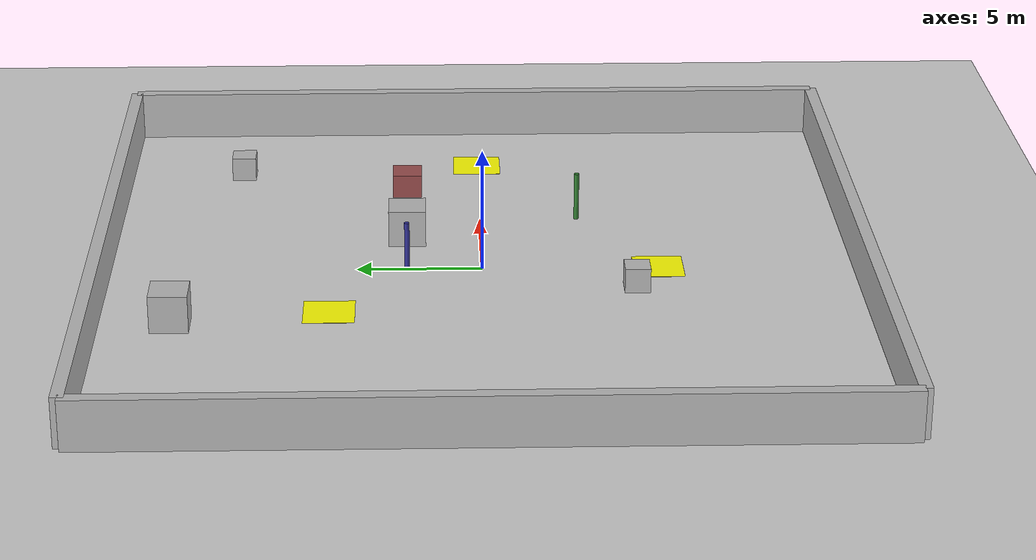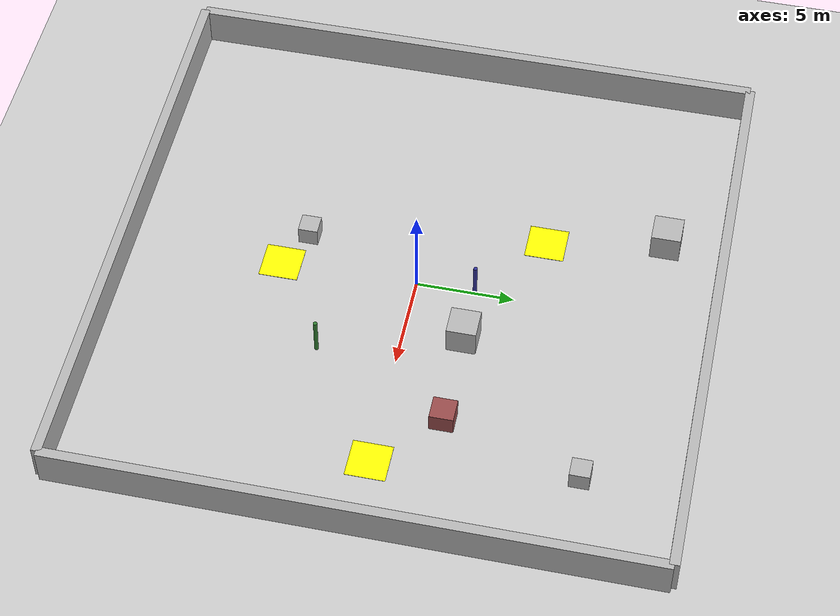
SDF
<sdf version="1.8">
 <world name="world_trekking">
  <spherical_coordinates>
   <surface_model>EARTH_WGS84</surface_model>
   <world_frame_orientation>ENU</world_frame_orientation>
   <latitude_deg>41.10410</latitude_deg>
   <longitude_deg>29.02376</longitude_deg>
   <elevation>0</elevation>
   <heading_deg>0</heading_deg>
  </spherical_coordinates>
  <model name="ground_plane">
   <static>true</static>
   <link name="ground">
    <visual name="visual">
     <geometry><plane><normal>0 0 1</normal><size>1000 1000</size></plane></geometry>
     <material>
      <ambient>0.8 0.8 0.8 1</ambient>
      <diffuse>0.8 0.8 0.8 1</diffuse>
      <specular>0.8 0.8 0.8 1</specular>
      <emissive>0.0 0.0 0.0 1</emissive>
     </material>
    </visual>
    <collision name="collision">
     <geometry><plane><normal>0 0 1</normal><size>1000 1000</size></plane></geometry>
    </collision>
    <inertial>
     <mass>1</mass>
     <inertia><ixx>1</ixx><ixy>0</ixy><ixz>0</ixz><iyy>1</iyy><iyz>0</iyz><izz>1</izz></inertia>
    </inertial>
   </link>
  </model>
  <model name="wall_front">
   <pose>0 15 1 0 0 0</pose>
   <static>true</static>
   <link name="link">
    <collision name="collision"><geometry><box><size>30 0.5 2</size></box></geometry></collision>
    <visual name="visual"><geometry><box><size>30 0.5 2</size></box></geometry></visual>
   </link>
  </model>
  <model name="wall_back">
   <pose>0 -15 1 0 0 0</pose>
   <static>true</static>
   <link name="link">
    <collision name="collision"><geometry><box><size>30 0.5 2</size></box></geometry></collision>
    <visual name="visual"><geometry><box><size>30 0.5 2</size></box></geometry></visual>
   </link>
  </model>
  <model name="wall_left">
   <pose>-15 0 1 0 0 0</pose>
   <static>true</static>
   <link name="link">
    <collision name="collision"><geometry><box><size>0.5 30 2</size></box></geometry></collision>
    <visual name="visual"><geometry><box><size>0.5 30 2</size></box></geometry></visual>
   </link>
  </model>
  <model name="wall_right">
   <pose>15 0 1 0 0 0</pose>
   <static>true</static>
   <link name="link">
    <collision name="collision"><geometry><box><size>0.5 30 2</size></box></geometry></collision>
    <visual name="visual"><geometry><box><size>0.5 30 2</size></box></geometry></visual>
   </link>
  </model>
  <model name="yellow_plate_1">
   <static>true</static>
   <pose>11 0.01 0 0 0 0</pose>
   <link name="link">
    <visual name="visual">
     <geometry><box><size>2 2 0.01</size></box></geometry>
     <material><ambient>1 1 0 1</ambient><diffuse>1 1 0 1</diffuse><specular>0.2 0.2 0.2 1</specular></material>
    </visual>
   </link>
  </model>
  <model name="yellow_plate_2">
   <static>true</static>
   <pose>-4 6 0.01 0 0 0</pose>
   <link name="link">
    <visual name="visual">
     <geometry><box><size>2 2 0.01</size></box></geometry>
     <material><ambient>1 1 0 1</ambient><diffuse>1 1 0 1</diffuse><specular>0.2 0.2 0.2 1</specular></material>
    </visual>
   </link>
  </model>
  <model name="yellow_plate_3">
   <static>true</static>
   <pose>0 -7 0.01 0 0 0</pose>
   <link name="link">
    <visual name="visual">
     <geometry><box><size>2 2 0.01</size></box></geometry>
     <material><ambient>1 1 0 1</ambient><diffuse>1 1 0 1</diffuse><specular>0.2 0.2 0.2 1</specular></material>
    </visual>
   </link>
  </model>
  <model name="box1">
   <pose>10 10 0.5 0 0 0</pose>
   <static>true</static>
   <link name="link">
    <collision name="collision"><geometry><box><size>1 1 1</size></box></geometry></collision>
    <visual name="visual"><geometry><box><size>1 1 1</size></box></geometry></visual>
   </link>
  </model>
  <model name="box2">
   <pose>-5 12 0.75 0 0 0</pose>
   <static>true</static>
   <link name="link">
    <collision name="collision"><geometry><box><size>1.5 1.5 1.5</size></box></geometry></collision>
    <visual name="visual"><geometry><box><size>1.5 1.5 1.5</size></box></geometry></visual>
   </link>
  </model>
  <model name="obstacle_box_1">
   <pose>8 3 0.5 0 0 0</pose>
   <static>true</static>
   <link name="link">
    <collision name="collision"><geometry><box><size>1.2 1.2 1</size></box></geometry></collision>
    <visual name="visual">
     <geometry><box><size>1.2 1.2 1</size></box></geometry>
     <material><diffuse>0.6 0.3 0.3 1</diffuse></material>
    </visual>
   </link>
  </model>
  <model name="obstacle_box_2">
   <pose>3 3 0.75 0 0 0</pose>
   <static>true</static>
   <link name="link">
    <collision name="collision"><geometry><box><size>1.5 1.5 1.5</size></box></geometry></collision>
    <visual name="visual"><geometry><box><size>1.5 1.5 1.5</size></box></geometry></visual>
   </link>
  </model>
  <model name="obstacle_box_3">
   <pose>-2 -6 0.5 0 0 0</pose>
   <static>true</static>
   <link name="link">
    <collision name="collision"><geometry><box><size>1 1 1</size></box></geometry></collision>
    <visual name="visual"><geometry><box><size>1 1 1</size></box></geometry></visual>
   </link>
  </model>
  <model name="narrow_post_1">
   <pose>0 3 1 0 0 0</pose>
   <static>true</static>
   <link name="link">
    <collision name="collision">
     <geometry><cylinder><radius>0.1</radius><length>2</length></cylinder></geometry>
    </collision>
    <visual name="visual">
     <geometry><cylinder><radius>0.1</radius><length>2</length></cylinder></geometry>
     <material><diffuse>0.2 0.2 0.6 1</diffuse></material>
    </visual>
   </link>
  </model>
  <model name="narrow_post_2">
   <pose>5 -4 1 0 0 0</pose>
   <static>true</static>
   <link name="link">
    <collision name="collision">
     <geometry><cylinder><radius>0.1</radius><length>2</length></cylinder></geometry>
    </collision>
    <visual name="visual">
     <geometry><cylinder><radius>0.1</radius><length>2</length></cylinder></geometry>
     <material><diffuse>0.2 0.5 0.2 1</diffuse></material>
    </visual>
   </link>
  </model>
  <light type="directional" name="sun">
   <pose>0 0 10 0 0 0</pose>
   <diffuse>0.8 0.8 0.8 1</diffuse>
   <specular>0.2 0.2 0.2 1</specular>
   <attenuation>
    <range>1000</range>
    <constant>0.9</constant>
    <linear>0.01</linear>
    <quadratic>0.001</quadratic>
   </attenuation>
   <direction>-0.5 0.1 -0.9</direction>
  </light>
 </world>
</sdf>
